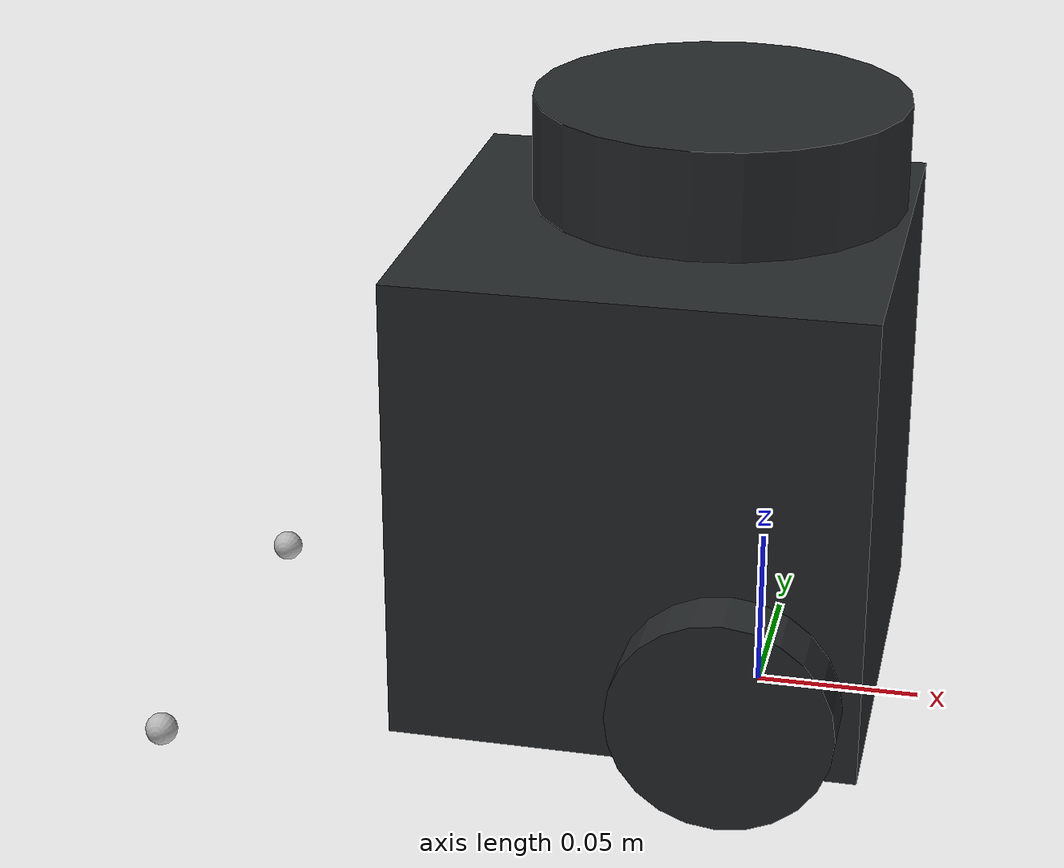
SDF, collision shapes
<sdf version='1.7'>
  <model name='turtlebot3_burger'>

    <link name="base_footprint"/>

    <link name='sim_base_link'>
      <inertial>
        <pose>-0.00429 0 0.015 0 -0 0</pose>
        <mass>0.944735</mass>
        <inertia>
          <ixx>0.00717896</ixx>
          <ixy>-1.22941e-05</ixy>
          <ixz>0.00057674</ixz>
          <iyy>0.00721804</iyy>
          <iyz>-5.01209e-06</iyz>
          <izz>0.00413858</izz>
        </inertia>
      </inertial>
      <collision name='base_footprint_fixed_joint_lump__base_link_collision'>
        <pose>-0.032 0 0.08 0 -0 0</pose>
        <geometry>
          <box>
            <size>0.14 0.14 0.143</size>
          </box>
        </geometry>
      </collision>
      <collision name='base_footprint_fixed_joint_lump__caster_back_link_collision_1'>
        <pose>-0.081 1e-06 0.005 -1.57 0 0</pose>
        <geometry>
          <box>
            <size>0.03 0.009 0.02</size>
          </box>
        </geometry>
      </collision>
      <collision name='base_footprint_fixed_joint_lump__base_scan_collision_2'>
        <pose>-0.017 0 0.1755 0 -0 0</pose>
        <geometry>
          <cylinder>
            <length>0.0315</length>
            <radius>0.055</radius>
          </cylinder>
        </geometry>
      </collision>
      <visual name='base_footprint_fixed_joint_lump__base_link_visual'>
        <pose>-0.032 0 0.01 0 -0 0</pose>
        <geometry>
          <mesh>
            <scale>0.001 0.001 0.001</scale>
            <uri>model://turtlebot3_description/meshes/bases/burger_base.stl</uri>
          </mesh>
        </geometry>
        <material>
          <diffuse> 0.145098039 0.156862745 0.164705882 1</diffuse>
          <ambient> 0.145098039 0.156862745 0.164705882 1</ambient>
          <specular>0.145098039 0.156862745 0.164705882 1</specular>
        </material>
      </visual>
      <visual name='base_footprint_fixed_joint_lump__base_scan_visual_1'>
        <pose>-0.032 0 0.182 0 -0 0</pose>
        <geometry>
          <mesh>
            <scale>0.001 0.001 0.001</scale>
            <uri>model://turtlebot3_description/meshes/sensors/lds.stl</uri>
          </mesh>
        </geometry>
        <material>
          <diffuse> 0.145098039 0.156862745 0.164705882 1</diffuse>
          <ambient> 0.145098039 0.156862745 0.164705882 1</ambient>
          <specular>0.145098039 0.156862745 0.164705882 1</specular>
        </material>
      </visual>
    </link>

    <joint name="base_joint" type="fixed">
      <pose>0 0 0.01 0 0 0</pose>
      <parent>base_footprint</parent>
      <child>sim_base_link</child>
    </joint>

    <link name="imu_link">
      <sensor name="imu" type="imu">
        <always_on>1</always_on>
        <update_rate>200</update_rate>
        <visualize>true</visualize>
        <topic>sim/imu</topic>
        <ignition_frame_id>imu_link</ignition_frame_id>
        <imu>
          <angular_velocity>
            <x>
              <noise type="gaussian">
                <mean>0.0</mean>
                <stddev>2e-4</stddev>
              </noise>
            </x>
            <y>
              <noise type="gaussian">
                <mean>0.0</mean>
                <stddev>2e-4</stddev>
              </noise>
            </y>
            <z>
              <noise type="gaussian">
                <mean>0.0</mean>
                <stddev>2e-4</stddev>
              </noise>
            </z>
          </angular_velocity>
          <linear_acceleration>
            <x>
              <noise type="gaussian">
                <mean>0.0</mean>
                <stddev>1.7e-2</stddev>
              </noise>
            </x>
            <y>
              <noise type="gaussian">
                <mean>0.0</mean>
                <stddev>1.7e-2</stddev>
              </noise>
            </y>
            <z>
              <noise type="gaussian">
                <mean>0.0</mean>
                <stddev>1.7e-2</stddev>
              </noise>
            </z>
          </linear_acceleration>
        </imu>
      </sensor>
    </link>

    <joint name="imu_joint" type="fixed">
      <pose>-0.032 0 0.068 0 0 0</pose>
      <parent>sim_base_link</parent>
      <child>imu_link</child>
    </joint>

    <!-- LIDAR -->
    <link name="sim_base_scan">
      <inertial>
        <pose>-0.052 0 0.111 0 0 0</pose>
        <inertia>
          <ixx>0.001</ixx>
          <ixy>0</ixy>
          <ixz>0</ixz>
          <iyy>0.001</iyy>
          <iyz>0</iyz>
          <izz>0.001</izz>
        </inertia>
        <mass>0.114</mass>
      </inertial>
      <collision name="lidar_sensor_collision">
        <pose>-0.052 0 0.111 0 0 0</pose>
        <geometry>
          <cylinder>
            <radius>0.0508</radius>
            <length>0.055</length>
          </cylinder>
        </geometry>
      </collision>
      <visual name="lidar_sensor_visual">
        <pose>-0.064 0 0.121 0 0 0</pose>
        <geometry>
          <mesh>
            <uri>model://turtlebot3/meshes/lds.dae</uri>
            <scale>0.001 0.001 0.001</scale>
          </mesh>
        </geometry>
        <material>
          <diffuse> 0.145098039 0.156862745 0.164705882 1</diffuse>
          <ambient> 0.145098039 0.156862745 0.164705882 1</ambient>
          <specular>0.145098039 0.156862745 0.164705882 1</specular>
        </material>
      </visual>
      <sensor name="gpu_lidar" type="gpu_lidar">
        <pose>-0.064 0 0.121 0 0 0</pose>
        <topic>sim_scan</topic>
        <ignition_frame_id>sim_base_scan</ignition_frame_id>
        <update_rate>5</update_rate>
        <ray>
          <scan>
            <horizontal>
              <samples>360</samples>
              <resolution>1</resolution>
              <min_angle>0</min_angle>
              <max_angle>6.28</max_angle>
            </horizontal>
          </scan>
          <range>
            <min>0.120000</min>
            <max>20.0</max>
            <resolution>0.015000</resolution>
          </range>
          <noise>
            <type>gaussian</type>
            <mean>0.0</mean>
            <stddev>0.01</stddev>
          </noise>
        </ray>
        <always_on>true</always_on>
        <visualize>1</visualize>
      </sensor>
    </link>

    <joint name="lidar_joint" type="fixed">
      <pose>-0.064 0 0.121 0 0 0</pose>
      <parent>sim_base_link</parent>
      <child>sim_base_scan</child>
    </joint>

    <link name='wheel_left_link'>
      <pose relative_to='wheel_left_joint'>0 0 0 0 -0 0</pose>
      <inertial>
        <pose>0 0 0 0 -0 0</pose>
        <mass>0.0284989</mass>
        <inertia>
          <ixx>1.11756e-05</ixx>
          <ixy>-4.23698e-11</ixy>
          <ixz>-5.93817e-09</ixz>
          <iyy>1.11924e-05</iyy>
          <iyz>-1.44001e-11</iyz>
          <izz>2.07126e-05</izz>
        </inertia>
      </inertial>
      <collision name='wheel_left_link_collision'>
        <pose>0 0 0 0 -0 0</pose>
        <surface>
          <friction>
            <ode>
              <mu>1.0</mu>
              <mu2>1.0</mu2>
            </ode>
          </friction>
        </surface>
        <geometry>
          <cylinder>
            <length>0.018</length>
            <radius>0.033</radius>
          </cylinder>
        </geometry>
      </collision>
      <visual name='wheel_left_link_visual'>
        <pose>0 0 0 1.57 -0 0</pose>
        <geometry>
          <mesh>
            <scale>0.001 0.001 0.001</scale>
            <uri>model://turtlebot3_description/meshes/wheels/left_tire.stl</uri>
          </mesh>
        </geometry>
        <material>
          <diffuse> 0.145098039 0.156862745 0.164705882 1</diffuse>
          <ambient> 0.145098039 0.156862745 0.164705882 1</ambient>
          <specular>0.145098039 0.156862745 0.164705882 1</specular>
        </material>
      </visual>
    </link>

    <joint name='wheel_left_joint' type='revolute'>
      <pose relative_to='sim_base_link'>0 0.08 0.033 -1.57 0 0</pose>
      <parent>sim_base_link</parent>
      <child>wheel_left_link</child>
      <axis>
        <xyz>0 0 1</xyz>
        <limit>
          <lower>-1e+16</lower>
          <upper>1e+16</upper>
        </limit>
        <dynamics>
          <spring_reference>0</spring_reference>
          <spring_stiffness>0</spring_stiffness>
          <damping>0.7</damping>
          <friction>0.0</friction>
        </dynamics>
      </axis>
    </joint>

    <joint name='wheel_right_joint' type='revolute'>
      <pose relative_to='base_footprint'>0 -0.08 0.033 -1.57 0 0</pose>
      <parent>sim_base_link</parent>
      <child>wheel_right_link</child>
      <axis>
        <xyz>0 0 1</xyz>
        <limit>
          <lower>-1e+16</lower>
          <upper>1e+16</upper>
        </limit>
        <dynamics>
          <spring_reference>0</spring_reference>
          <spring_stiffness>0</spring_stiffness>
          <damping>0.7</damping>
          <friction>0.0</friction>
        </dynamics>
      </axis>
    </joint>

    <link name='wheel_right_link'>
      <pose relative_to='wheel_right_joint'>0 0 0 0 -0 0</pose>
      <inertial>
        <pose>0 0 0 0 -0 0</pose>
        <mass>0.0284989</mass>
        <inertia>
          <ixx>1.11756e-05</ixx>
          <ixy>-4.23698e-11</ixy>
          <ixz>-5.93817e-09</ixz>
          <iyy>1.11924e-05</iyy>
          <iyz>-1.44001e-11</iyz>
          <izz>2.07126e-05</izz>
        </inertia>
      </inertial>
      <collision name='wheel_right_link_collision'>
        <pose>0 0 0 0 -0 0</pose>
        <surface>
          <friction>
            <ode>
              <mu>1.0</mu>
              <mu2>1.0</mu2>
            </ode>
          </friction>
        </surface>
        <geometry>
          <cylinder>
            <length>0.018</length>
            <radius>0.033</radius>
          </cylinder>
        </geometry>
      </collision>
      <visual name='wheel_right_link_visual'>
        <pose>0 0 0 1.57 -0 0</pose>
        <geometry>
          <mesh>
            <scale>0.001 0.001 0.001</scale>
            <uri>model://turtlebot3_description/meshes/wheels/right_tire.stl</uri>
          </mesh>
        </geometry>
        <material>
          <diffuse> 0.145098039 0.156862745 0.164705882 1</diffuse>
          <ambient> 0.145098039 0.156862745 0.164705882 1</ambient>
          <specular>0.145098039 0.156862745 0.164705882 1</specular>
        </material>
      </visual>
    </link>

    <link name='caster_back_right_link'>
      <pose>-0.177 -0.064 -0.004 -1.57 0 0</pose>
      <inertial>
        <mass>0.05</mass>
        <inertia>
          <ixx>0.1e-4</ixx>
          <ixy>0.000</ixy>
          <ixz>0.000</ixz>
          <iyy>0.1e-4</iyy>
          <iyz>0.000</iyz>
          <izz>0.1e-4</izz>
        </inertia>
      </inertial>
      <collision name='collision'>
        <geometry>
          <sphere>
            <radius>0.005000</radius>
          </sphere>
        </geometry>
        <surface>
          <contact>
            <ode>
              <soft_cfm>0</soft_cfm>
              <soft_erp>0.2</soft_erp>
              <kp>1e+5</kp>
              <kd>1</kd>
              <max_vel>0.01</max_vel>
              <min_depth>0.001</min_depth>
            </ode>
          </contact>
        </surface>
      </collision>
    </link>

    <joint name='caster_back_right_joint' type='continuous'>
      <parent>sim_base_link</parent>
      <child>caster_back_right_link</child>
      <axis>
        <xyz>0 0 1</xyz>
        <limit>
          <lower>-1e16</lower>
          <upper>1e16</upper>
          <effort>1</effort>
          <velocity>10</velocity>
        </limit>
        <dynamics>
          <damping>0.7</damping>
          <friction>0.1</friction>
        </dynamics>
      </axis>
    </joint>

    <link name='caster_back_left_link'>
      <pose>-0.177 0.064 -0.004 -1.57 0 0</pose>
      <inertial>
        <mass>0.05</mass>
        <inertia>
          <ixx>1e-4</ixx>
          <ixy>0.000</ixy>
          <ixz>0.000</ixz>
          <iyy>1e-4</iyy>
          <iyz>0.000</iyz>
          <izz>1e-4</izz>
        </inertia>
      </inertial>
      <collision name='collision'>
        <geometry>
          <sphere>
            <radius>0.005000</radius>
          </sphere>
        </geometry>
        <surface>
          <contact>
            <ode>
              <soft_cfm>0</soft_cfm>
              <soft_erp>0.2</soft_erp>
              <kp>1e+5</kp>
              <kd>1</kd>
              <max_vel>0.01</max_vel>
              <min_depth>0.001</min_depth>
            </ode>
          </contact>
        </surface>
      </collision>
    </link>

    <joint name='caster_back_left_joint' type='continuous'>
      <parent>sim_base_link</parent>
      <child>caster_back_left_link</child>
      <axis>
        <xyz>0 0 1</xyz>
        <limit>
          <lower>-1e16</lower>
          <upper>1e16</upper>
          <effort>1</effort>
          <velocity>10</velocity>
        </limit>
        <dynamics>
          <damping>0.7</damping>
          <friction>0.1</friction>
        </dynamics>
      </axis>
    </joint>

    <link name="camera_link"/>

    <joint name="camera_joint" type="fixed">
      <parent>sim_base_link</parent>
      <child>camera_link</child>
      <pose>0.064 -0.065 0.094 0 0 0</pose>
      <axis>
        <xyz>0 0 1</xyz>
      </axis>
    </joint>

    <link name="camera_rgb_frame">
      <inertial>
        <pose>0.069 -0.047 0.107 0 0 0</pose>
        <inertia>
          <ixx>0.001</ixx>
          <ixy>0.000</ixy>
          <ixz>0.000</ixz>
          <iyy>0.001</iyy>
          <iyz>0.000</iyz>
          <izz>0.001</izz>
        </inertia>
        <mass>0.035</mass>
      </inertial>
      <pose>0.069 -0.047 0.107 0 0 0</pose>
      <sensor name="camera" type="camera">
        <always_on>true</always_on>
        <visualize>true</visualize>
        <update_rate>30</update_rate>
        <camera_info_topic>/sim/camera/rgb/camera_info</camera_info_topic>
        <topic>/sim/camera/rgb/image_raw</topic>
        <ignition_frame_id>camera_rgb_frame</ignition_frame_id>
        <camera name="intel_realsense_r200">
          <horizontal_fov>1.02974</horizontal_fov>
          <image>
            <width>1920</width>
            <height>1080</height>
            <format>R8G8B8</format>
          </image>
          <clip>
            <near>0.02</near>
            <far>300</far>
          </clip>
          <noise>
            <type>gaussian</type>
            <mean>0.0</mean>
            <stddev>0.007</stddev>
          </noise>
        </camera>
      </sensor>
    </link>

    <joint name="camera_rgb_joint" type="fixed">
      <parent>camera_link</parent>
      <child>camera_rgb_frame</child>
      <pose>0.005 0.018 0.013 0 0 0</pose>
      <axis>
        <xyz>0 0 1</xyz>
      </axis>
    </joint>

    <plugin name="scan" filename="libros_ign_ros2_laser_sensor.so">
      <ros>
        <remapping>scan:=/sim_scan</remapping>  <!-- 반드시 절대경로로 -->
      </ros>
    </plugin>

    <plugin filename="libignition-gazebo-diff-drive-system.so"
      name="ignition::gazebo::systems::DiffDrive">
      <left_joint>wheel_left_joint</left_joint>
      <right_joint>wheel_right_joint</right_joint>
      <wheel_separation>0.287</wheel_separation>
      <wheel_radius>0.033</wheel_radius>
      <topic>cmd_vel_half</topic>
    </plugin>

    <!-- Differential drive -->
    <plugin filename="libignition-gazebo-diff-drive-system.so"
      name="ignition::gazebo::systems::DiffDrive">
      <left_joint>wheel_left_joint</left_joint>
      <right_joint>wheel_right_joint</right_joint>
      <wheel_separation>0.287</wheel_separation>
      <wheel_radius>0.033</wheel_radius>
      <topic>cmd_vel_half</topic>
    </plugin>

  </model>
</sdf>
